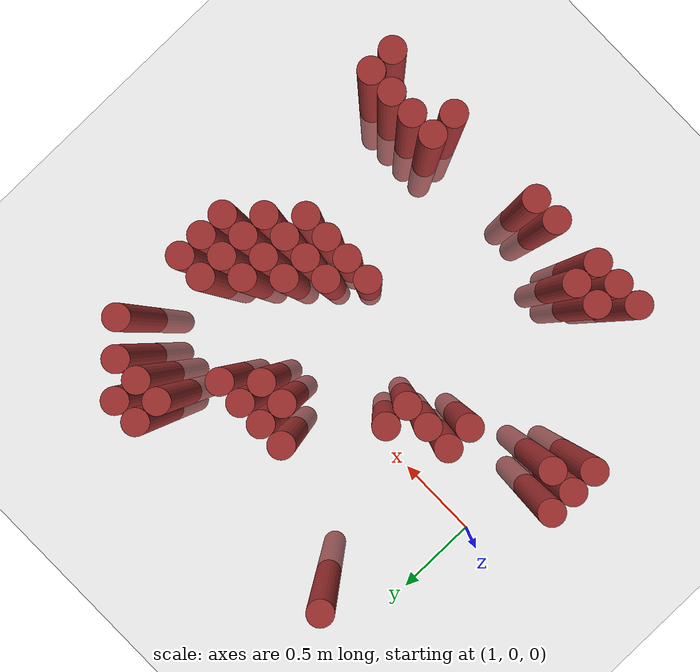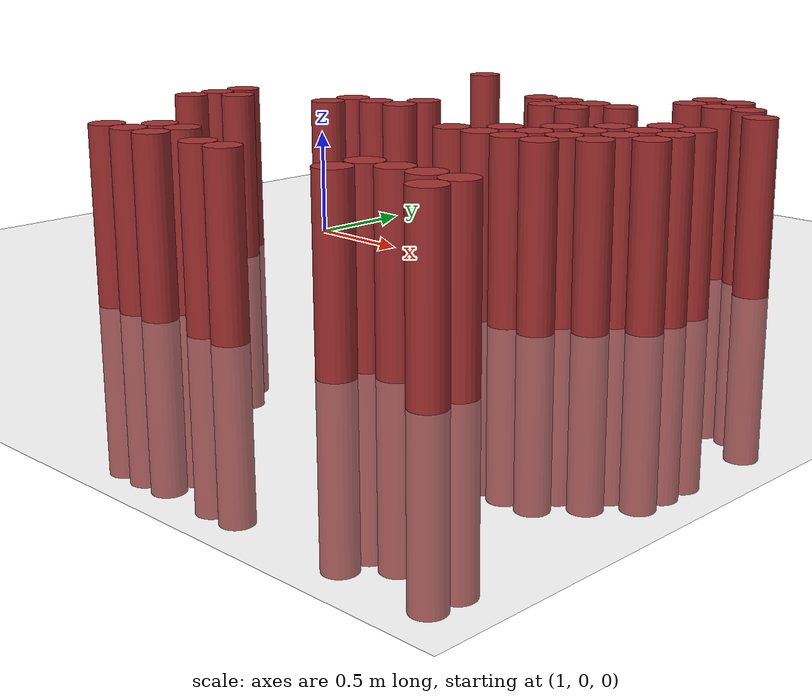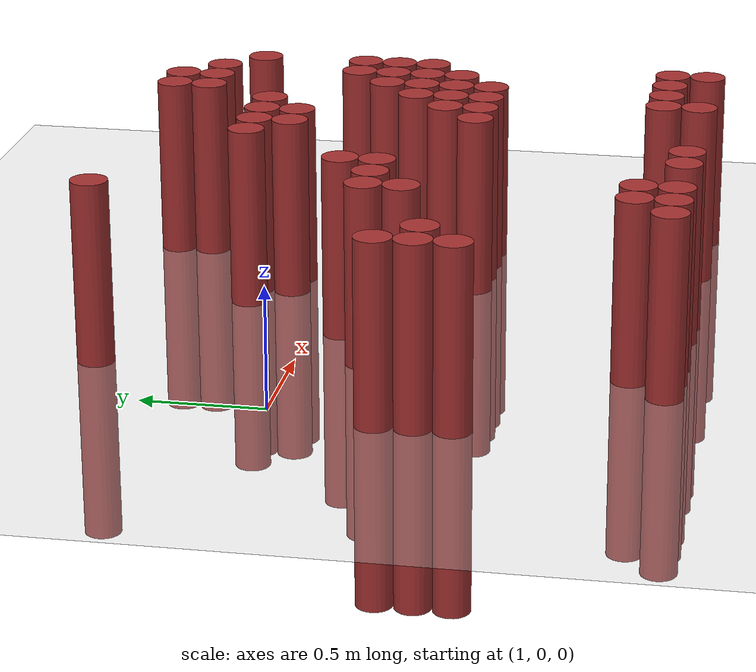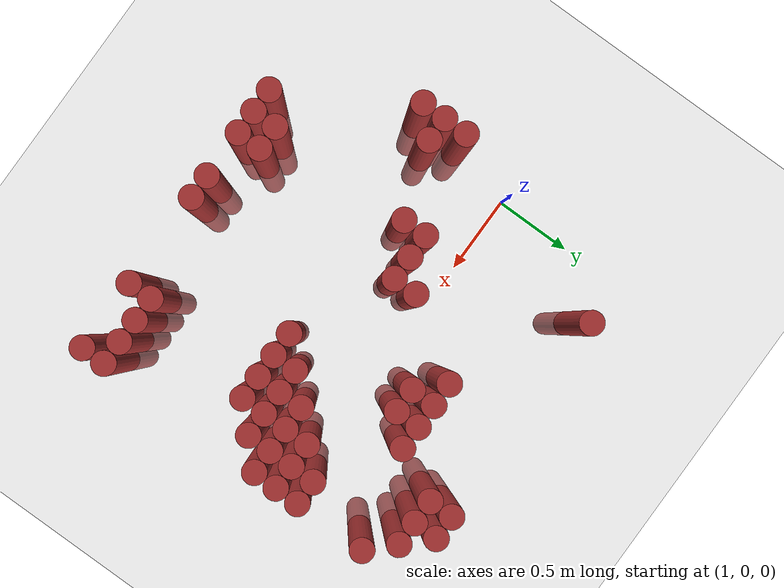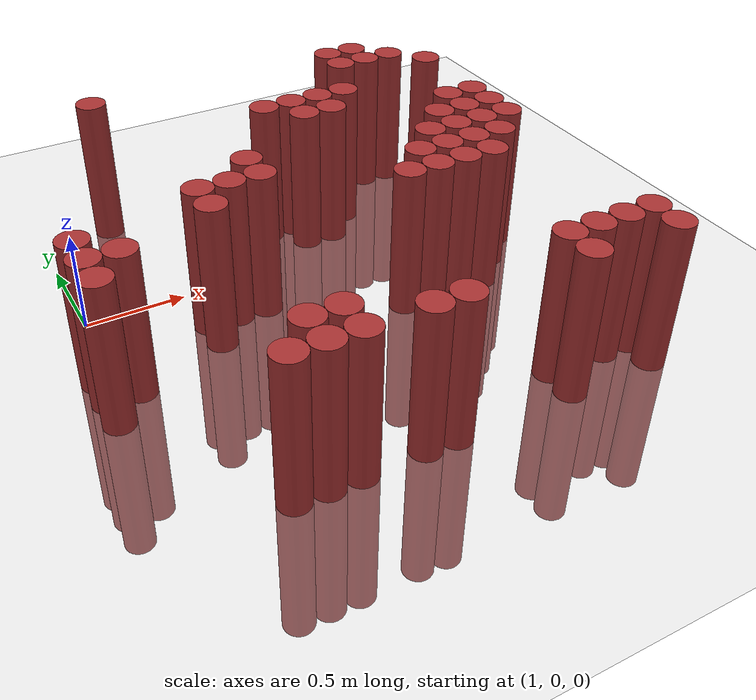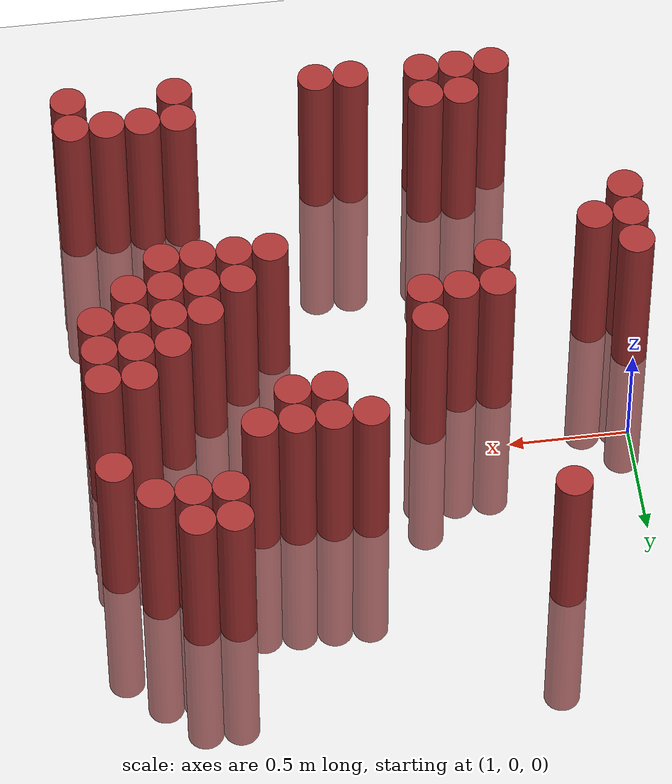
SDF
<sdf version="1.6">
 <world name="default">
  <model name="ground_plane">
   <static>1</static>
   <link name="link">
    <collision name="collision">
     <geometry><plane><normal>0 0 1</normal><size>100 100</size></plane></geometry>
     <surface><friction><ode><mu>100</mu><mu2>50</mu2></ode></friction></surface>
    </collision>
    <visual name="visual">
     <cast_shadows>0</cast_shadows>
     <geometry><plane><normal>0 0 1</normal><size>100 100</size></plane></geometry>
     <material>
      <script><uri>file://media/materials/scripts/gazebo.material</uri><name>Gazebo/Grey</name></script>
     </material>
    </visual>
   </link>
  </model>
  <model name="unit_cylinder_449">
   <static>1</static>
   <pose>0.925000 -0.725000 0.000000 0.000000 0.000000 0.000000</pose>
   <link name="link">
    <inertial>
     <mass>1</mass>
     <inertia><ixx>0.145833</ixx><ixy>0</ixy><ixz>0</ixz><iyy>0.145833</iyy><iyz>0</iyz><izz>0.125</izz></inertia>
    </inertial>
    <collision name="collision">
     <geometry><cylinder><radius>0.075000</radius><length>1.5</length></cylinder></geometry>
    </collision>
    <visual name="visual">
     <geometry><cylinder><radius>0.075000</radius><length>1.5</length></cylinder></geometry>
     <material>
      <ambient>0.648000 0.192000 0.192000 1</ambient>
      <diffuse>0.648000 0.192000 0.192000 1</diffuse>
     </material>
     <material>
      <script><name>Gazebo/Grey</name><uri>file://media/materials/scripts/gazebo.material</uri></script>
     </material>
    </visual>
   </link>
  </model>
  <model name="unit_cylinder_450">
   <static>1</static>
   <pose>0.925000 -0.575000 0.000000 0.000000 0.000000 0.000000</pose>
   <link name="link">
    <inertial>
     <mass>1</mass>
     <inertia><ixx>0.145833</ixx><ixy>0</ixy><ixz>0</ixz><iyy>0.145833</iyy><iyz>0</iyz><izz>0.125</izz></inertia>
    </inertial>
    <collision name="collision">
     <geometry><cylinder><radius>0.075000</radius><length>1.5</length></cylinder></geometry>
    </collision>
    <visual name="visual">
     <geometry><cylinder><radius>0.075000</radius><length>1.5</length></cylinder></geometry>
     <material>
      <ambient>0.648000 0.192000 0.192000 1</ambient>
      <diffuse>0.648000 0.192000 0.192000 1</diffuse>
     </material>
     <material>
      <script><name>Gazebo/Grey</name><uri>file://media/materials/scripts/gazebo.material</uri></script>
     </material>
    </visual>
   </link>
  </model>
  <model name="unit_cylinder_451">
   <static>1</static>
   <pose>0.925000 -0.425000 0.000000 0.000000 0.000000 0.000000</pose>
   <link name="link">
    <inertial>
     <mass>1</mass>
     <inertia><ixx>0.145833</ixx><ixy>0</ixy><ixz>0</ixz><iyy>0.145833</iyy><iyz>0</iyz><izz>0.125</izz></inertia>
    </inertial>
    <collision name="collision">
     <geometry><cylinder><radius>0.075000</radius><length>1.5</length></cylinder></geometry>
    </collision>
    <visual name="visual">
     <geometry><cylinder><radius>0.075000</radius><length>1.5</length></cylinder></geometry>
     <material>
      <ambient>0.648000 0.192000 0.192000 1</ambient>
      <diffuse>0.648000 0.192000 0.192000 1</diffuse>
     </material>
     <material>
      <script><name>Gazebo/Grey</name><uri>file://media/materials/scripts/gazebo.material</uri></script>
     </material>
    </visual>
   </link>
  </model>
  <model name="unit_cylinder_464">
   <static>1</static>
   <pose>1.075000 -0.575000 0.000000 0.000000 0.000000 0.000000</pose>
   <link name="link">
    <inertial>
     <mass>1</mass>
     <inertia><ixx>0.145833</ixx><ixy>0</ixy><ixz>0</ixz><iyy>0.145833</iyy><iyz>0</iyz><izz>0.125</izz></inertia>
    </inertial>
    <collision name="collision">
     <geometry><cylinder><radius>0.075000</radius><length>1.5</length></cylinder></geometry>
    </collision>
    <visual name="visual">
     <geometry><cylinder><radius>0.075000</radius><length>1.5</length></cylinder></geometry>
     <material>
      <ambient>0.648000 0.192000 0.192000 1</ambient>
      <diffuse>0.648000 0.192000 0.192000 1</diffuse>
     </material>
     <material>
      <script><name>Gazebo/Grey</name><uri>file://media/materials/scripts/gazebo.material</uri></script>
     </material>
    </visual>
   </link>
  </model>
  <model name="unit_cylinder_476">
   <static>1</static>
   <pose>1.375000 -1.475000 0.000000 0.000000 0.000000 0.000000</pose>
   <link name="link">
    <inertial>
     <mass>1</mass>
     <inertia><ixx>0.145833</ixx><ixy>0</ixy><ixz>0</ixz><iyy>0.145833</iyy><iyz>0</iyz><izz>0.125</izz></inertia>
    </inertial>
    <collision name="collision">
     <geometry><cylinder><radius>0.075000</radius><length>1.5</length></cylinder></geometry>
    </collision>
    <visual name="visual">
     <geometry><cylinder><radius>0.075000</radius><length>1.5</length></cylinder></geometry>
     <material>
      <ambient>0.648000 0.192000 0.192000 1</ambient>
      <diffuse>0.648000 0.192000 0.192000 1</diffuse>
     </material>
     <material>
      <script><name>Gazebo/Grey</name><uri>file://media/materials/scripts/gazebo.material</uri></script>
     </material>
    </visual>
   </link>
  </model>
  <model name="unit_cylinder_477">
   <static>1</static>
   <pose>1.375000 0.775000 0.000000 0.000000 0.000000 0.000000</pose>
   <link name="link">
    <inertial>
     <mass>1</mass>
     <inertia><ixx>0.145833</ixx><ixy>0</ixy><ixz>0</ixz><iyy>0.145833</iyy><iyz>0</iyz><izz>0.125</izz></inertia>
    </inertial>
    <collision name="collision">
     <geometry><cylinder><radius>0.075000</radius><length>1.5</length></cylinder></geometry>
    </collision>
    <visual name="visual">
     <geometry><cylinder><radius>0.075000</radius><length>1.5</length></cylinder></geometry>
     <material>
      <ambient>0.648000 0.192000 0.192000 1</ambient>
      <diffuse>0.648000 0.192000 0.192000 1</diffuse>
     </material>
     <material>
      <script><name>Gazebo/Grey</name><uri>file://media/materials/scripts/gazebo.material</uri></script>
     </material>
    </visual>
   </link>
  </model>
  <model name="unit_cylinder_481">
   <static>1</static>
   <pose>1.525000 -1.475000 0.000000 0.000000 0.000000 0.000000</pose>
   <link name="link">
    <inertial>
     <mass>1</mass>
     <inertia><ixx>0.145833</ixx><ixy>0</ixy><ixz>0</ixz><iyy>0.145833</iyy><iyz>0</iyz><izz>0.125</izz></inertia>
    </inertial>
    <collision name="collision">
     <geometry><cylinder><radius>0.075000</radius><length>1.5</length></cylinder></geometry>
    </collision>
    <visual name="visual">
     <geometry><cylinder><radius>0.075000</radius><length>1.5</length></cylinder></geometry>
     <material>
      <ambient>0.648000 0.192000 0.192000 1</ambient>
      <diffuse>0.648000 0.192000 0.192000 1</diffuse>
     </material>
     <material>
      <script><name>Gazebo/Grey</name><uri>file://media/materials/scripts/gazebo.material</uri></script>
     </material>
    </visual>
   </link>
  </model>
  <model name="unit_cylinder_482">
   <static>1</static>
   <pose>1.525000 -1.325000 0.000000 0.000000 0.000000 0.000000</pose>
   <link name="link">
    <inertial>
     <mass>1</mass>
     <inertia><ixx>0.145833</ixx><ixy>0</ixy><ixz>0</ixz><iyy>0.145833</iyy><iyz>0</iyz><izz>0.125</izz></inertia>
    </inertial>
    <collision name="collision">
     <geometry><cylinder><radius>0.075000</radius><length>1.5</length></cylinder></geometry>
    </collision>
    <visual name="visual">
     <geometry><cylinder><radius>0.075000</radius><length>1.5</length></cylinder></geometry>
     <material>
      <ambient>0.648000 0.192000 0.192000 1</ambient>
      <diffuse>0.648000 0.192000 0.192000 1</diffuse>
     </material>
     <material>
      <script><name>Gazebo/Grey</name><uri>file://media/materials/scripts/gazebo.material</uri></script>
     </material>
    </visual>
   </link>
  </model>
  <model name="unit_cylinder_483">
   <static>1</static>
   <pose>1.525000 -0.425000 0.000000 0.000000 0.000000 0.000000</pose>
   <link name="link">
    <inertial>
     <mass>1</mass>
     <inertia><ixx>0.145833</ixx><ixy>0</ixy><ixz>0</ixz><iyy>0.145833</iyy><iyz>0</iyz><izz>0.125</izz></inertia>
    </inertial>
    <collision name="collision">
     <geometry><cylinder><radius>0.075000</radius><length>1.5</length></cylinder></geometry>
    </collision>
    <visual name="visual">
     <geometry><cylinder><radius>0.075000</radius><length>1.5</length></cylinder></geometry>
     <material>
      <ambient>0.648000 0.192000 0.192000 1</ambient>
      <diffuse>0.648000 0.192000 0.192000 1</diffuse>
     </material>
     <material>
      <script><name>Gazebo/Grey</name><uri>file://media/materials/scripts/gazebo.material</uri></script>
     </material>
    </visual>
   </link>
  </model>
  <model name="unit_cylinder_484">
   <static>1</static>
   <pose>1.525000 -0.275000 0.000000 0.000000 0.000000 0.000000</pose>
   <link name="link">
    <inertial>
     <mass>1</mass>
     <inertia><ixx>0.145833</ixx><ixy>0</ixy><ixz>0</ixz><iyy>0.145833</iyy><iyz>0</iyz><izz>0.125</izz></inertia>
    </inertial>
    <collision name="collision">
     <geometry><cylinder><radius>0.075000</radius><length>1.5</length></cylinder></geometry>
    </collision>
    <visual name="visual">
     <geometry><cylinder><radius>0.075000</radius><length>1.5</length></cylinder></geometry>
     <material>
      <ambient>0.648000 0.192000 0.192000 1</ambient>
      <diffuse>0.648000 0.192000 0.192000 1</diffuse>
     </material>
     <material>
      <script><name>Gazebo/Grey</name><uri>file://media/materials/scripts/gazebo.material</uri></script>
     </material>
    </visual>
   </link>
  </model>
  <model name="unit_cylinder_488">
   <static>1</static>
   <pose>1.675000 -1.475000 0.000000 0.000000 0.000000 0.000000</pose>
   <link name="link">
    <inertial>
     <mass>1</mass>
     <inertia><ixx>0.145833</ixx><ixy>0</ixy><ixz>0</ixz><iyy>0.145833</iyy><iyz>0</iyz><izz>0.125</izz></inertia>
    </inertial>
    <collision name="collision">
     <geometry><cylinder><radius>0.075000</radius><length>1.5</length></cylinder></geometry>
    </collision>
    <visual name="visual">
     <geometry><cylinder><radius>0.075000</radius><length>1.5</length></cylinder></geometry>
     <material>
      <ambient>0.648000 0.192000 0.192000 1</ambient>
      <diffuse>0.648000 0.192000 0.192000 1</diffuse>
     </material>
     <material>
      <script><name>Gazebo/Grey</name><uri>file://media/materials/scripts/gazebo.material</uri></script>
     </material>
    </visual>
   </link>
  </model>
  <model name="unit_cylinder_489">
   <static>1</static>
   <pose>1.675000 -1.325000 0.000000 0.000000 0.000000 0.000000</pose>
   <link name="link">
    <inertial>
     <mass>1</mass>
     <inertia><ixx>0.145833</ixx><ixy>0</ixy><ixz>0</ixz><iyy>0.145833</iyy><iyz>0</iyz><izz>0.125</izz></inertia>
    </inertial>
    <collision name="collision">
     <geometry><cylinder><radius>0.075000</radius><length>1.5</length></cylinder></geometry>
    </collision>
    <visual name="visual">
     <geometry><cylinder><radius>0.075000</radius><length>1.5</length></cylinder></geometry>
     <material>
      <ambient>0.648000 0.192000 0.192000 1</ambient>
      <diffuse>0.648000 0.192000 0.192000 1</diffuse>
     </material>
     <material>
      <script><name>Gazebo/Grey</name><uri>file://media/materials/scripts/gazebo.material</uri></script>
     </material>
    </visual>
   </link>
  </model>
  <model name="unit_cylinder_490">
   <static>1</static>
   <pose>1.675000 -0.275000 0.000000 0.000000 0.000000 0.000000</pose>
   <link name="link">
    <inertial>
     <mass>1</mass>
     <inertia><ixx>0.145833</ixx><ixy>0</ixy><ixz>0</ixz><iyy>0.145833</iyy><iyz>0</iyz><izz>0.125</izz></inertia>
    </inertial>
    <collision name="collision">
     <geometry><cylinder><radius>0.075000</radius><length>1.5</length></cylinder></geometry>
    </collision>
    <visual name="visual">
     <geometry><cylinder><radius>0.075000</radius><length>1.5</length></cylinder></geometry>
     <material>
      <ambient>0.648000 0.192000 0.192000 1</ambient>
      <diffuse>0.648000 0.192000 0.192000 1</diffuse>
     </material>
     <material>
      <script><name>Gazebo/Grey</name><uri>file://media/materials/scripts/gazebo.material</uri></script>
     </material>
    </visual>
   </link>
  </model>
  <model name="unit_cylinder_497">
   <static>1</static>
   <pose>1.825000 -0.275000 0.000000 0.000000 0.000000 0.000000</pose>
   <link name="link">
    <inertial>
     <mass>1</mass>
     <inertia><ixx>0.145833</ixx><ixy>0</ixy><ixz>0</ixz><iyy>0.145833</iyy><iyz>0</iyz><izz>0.125</izz></inertia>
    </inertial>
    <collision name="collision">
     <geometry><cylinder><radius>0.075000</radius><length>1.5</length></cylinder></geometry>
    </collision>
    <visual name="visual">
     <geometry><cylinder><radius>0.075000</radius><length>1.5</length></cylinder></geometry>
     <material>
      <ambient>0.648000 0.192000 0.192000 1</ambient>
      <diffuse>0.648000 0.192000 0.192000 1</diffuse>
     </material>
     <material>
      <script><name>Gazebo/Grey</name><uri>file://media/materials/scripts/gazebo.material</uri></script>
     </material>
    </visual>
   </link>
  </model>
  <model name="unit_cylinder_498">
   <static>1</static>
   <pose>1.825000 -0.125000 0.000000 0.000000 0.000000 0.000000</pose>
   <link name="link">
    <inertial>
     <mass>1</mass>
     <inertia><ixx>0.145833</ixx><ixy>0</ixy><ixz>0</ixz><iyy>0.145833</iyy><iyz>0</iyz><izz>0.125</izz></inertia>
    </inertial>
    <collision name="collision">
     <geometry><cylinder><radius>0.075000</radius><length>1.5</length></cylinder></geometry>
    </collision>
    <visual name="visual">
     <geometry><cylinder><radius>0.075000</radius><length>1.5</length></cylinder></geometry>
     <material>
      <ambient>0.648000 0.192000 0.192000 1</ambient>
      <diffuse>0.648000 0.192000 0.192000 1</diffuse>
     </material>
     <material>
      <script><name>Gazebo/Grey</name><uri>file://media/materials/scripts/gazebo.material</uri></script>
     </material>
    </visual>
   </link>
  </model>
  <model name="unit_cylinder_506">
   <static>1</static>
   <pose>1.975000 -1.475000 0.000000 0.000000 0.000000 0.000000</pose>
   <link name="link">
    <inertial>
     <mass>1</mass>
     <inertia><ixx>0.145833</ixx><ixy>0</ixy><ixz>0</ixz><iyy>0.145833</iyy><iyz>0</iyz><izz>0.125</izz></inertia>
    </inertial>
    <collision name="collision">
     <geometry><cylinder><radius>0.075000</radius><length>1.5</length></cylinder></geometry>
    </collision>
    <visual name="visual">
     <geometry><cylinder><radius>0.075000</radius><length>1.5</length></cylinder></geometry>
     <material>
      <ambient>0.648000 0.192000 0.192000 1</ambient>
      <diffuse>0.648000 0.192000 0.192000 1</diffuse>
     </material>
     <material>
      <script><name>Gazebo/Grey</name><uri>file://media/materials/scripts/gazebo.material</uri></script>
     </material>
    </visual>
   </link>
  </model>
  <model name="unit_cylinder_507">
   <static>1</static>
   <pose>2.125000 -1.475000 0.000000 0.000000 0.000000 0.000000</pose>
   <link name="link">
    <inertial>
     <mass>1</mass>
     <inertia><ixx>0.145833</ixx><ixy>0</ixy><ixz>0</ixz><iyy>0.145833</iyy><iyz>0</iyz><izz>0.125</izz></inertia>
    </inertial>
    <collision name="collision">
     <geometry><cylinder><radius>0.075000</radius><length>1.5</length></cylinder></geometry>
    </collision>
    <visual name="visual">
     <geometry><cylinder><radius>0.075000</radius><length>1.5</length></cylinder></geometry>
     <material>
      <ambient>0.648000 0.192000 0.192000 1</ambient>
      <diffuse>0.648000 0.192000 0.192000 1</diffuse>
     </material>
     <material>
      <script><name>Gazebo/Grey</name><uri>file://media/materials/scripts/gazebo.material</uri></script>
     </material>
    </visual>
   </link>
  </model>
  <model name="unit_cylinder_508">
   <static>1</static>
   <pose>2.125000 0.325000 0.000000 0.000000 0.000000 0.000000</pose>
   <link name="link">
    <inertial>
     <mass>1</mass>
     <inertia><ixx>0.145833</ixx><ixy>0</ixy><ixz>0</ixz><iyy>0.145833</iyy><iyz>0</iyz><izz>0.125</izz></inertia>
    </inertial>
    <collision name="collision">
     <geometry><cylinder><radius>0.075000</radius><length>1.5</length></cylinder></geometry>
    </collision>
    <visual name="visual">
     <geometry><cylinder><radius>0.075000</radius><length>1.5</length></cylinder></geometry>
     <material>
      <ambient>0.648000 0.192000 0.192000 1</ambient>
      <diffuse>0.648000 0.192000 0.192000 1</diffuse>
     </material>
     <material>
      <script><name>Gazebo/Grey</name><uri>file://media/materials/scripts/gazebo.material</uri></script>
     </material>
    </visual>
   </link>
  </model>
  <model name="unit_cylinder_509">
   <static>1</static>
   <pose>2.275000 0.175000 0.000000 0.000000 0.000000 0.000000</pose>
   <link name="link">
    <inertial>
     <mass>1</mass>
     <inertia><ixx>0.145833</ixx><ixy>0</ixy><ixz>0</ixz><iyy>0.145833</iyy><iyz>0</iyz><izz>0.125</izz></inertia>
    </inertial>
    <collision name="collision">
     <geometry><cylinder><radius>0.075000</radius><length>1.5</length></cylinder></geometry>
    </collision>
    <visual name="visual">
     <geometry><cylinder><radius>0.075000</radius><length>1.5</length></cylinder></geometry>
     <material>
      <ambient>0.648000 0.192000 0.192000 1</ambient>
      <diffuse>0.648000 0.192000 0.192000 1</diffuse>
     </material>
     <material>
      <script><name>Gazebo/Grey</name><uri>file://media/materials/scripts/gazebo.material</uri></script>
     </material>
    </visual>
   </link>
  </model>
  <model name="unit_cylinder_510">
   <static>1</static>
   <pose>2.275000 0.325000 0.000000 0.000000 0.000000 0.000000</pose>
   <link name="link">
    <inertial>
     <mass>1</mass>
     <inertia><ixx>0.145833</ixx><ixy>0</ixy><ixz>0</ixz><iyy>0.145833</iyy><iyz>0</iyz><izz>0.125</izz></inertia>
    </inertial>
    <collision name="collision">
     <geometry><cylinder><radius>0.075000</radius><length>1.5</length></cylinder></geometry>
    </collision>
    <visual name="visual">
     <geometry><cylinder><radius>0.075000</radius><length>1.5</length></cylinder></geometry>
     <material>
      <ambient>0.648000 0.192000 0.192000 1</ambient>
      <diffuse>0.648000 0.192000 0.192000 1</diffuse>
     </material>
     <material>
      <script><name>Gazebo/Grey</name><uri>file://media/materials/scripts/gazebo.material</uri></script>
     </material>
    </visual>
   </link>
  </model>
  <model name="unit_cylinder_512">
   <static>1</static>
   <pose>2.425000 -0.575000 0.000000 0.000000 0.000000 0.000000</pose>
   <link name="link">
    <inertial>
     <mass>1</mass>
     <inertia><ixx>0.145833</ixx><ixy>0</ixy><ixz>0</ixz><iyy>0.145833</iyy><iyz>0</iyz><izz>0.125</izz></inertia>
    </inertial>
    <collision name="collision">
     <geometry><cylinder><radius>0.075000</radius><length>1.5</length></cylinder></geometry>
    </collision>
    <visual name="visual">
     <geometry><cylinder><radius>0.075000</radius><length>1.5</length></cylinder></geometry>
     <material>
      <ambient>0.648000 0.192000 0.192000 1</ambient>
      <diffuse>0.648000 0.192000 0.192000 1</diffuse>
     </material>
     <material>
      <script><name>Gazebo/Grey</name><uri>file://media/materials/scripts/gazebo.material</uri></script>
     </material>
    </visual>
   </link>
  </model>
  <model name="unit_cylinder_513">
   <static>1</static>
   <pose>2.425000 0.175000 0.000000 0.000000 0.000000 0.000000</pose>
   <link name="link">
    <inertial>
     <mass>1</mass>
     <inertia><ixx>0.145833</ixx><ixy>0</ixy><ixz>0</ixz><iyy>0.145833</iyy><iyz>0</iyz><izz>0.125</izz></inertia>
    </inertial>
    <collision name="collision">
     <geometry><cylinder><radius>0.075000</radius><length>1.5</length></cylinder></geometry>
    </collision>
    <visual name="visual">
     <geometry><cylinder><radius>0.075000</radius><length>1.5</length></cylinder></geometry>
     <material>
      <ambient>0.648000 0.192000 0.192000 1</ambient>
      <diffuse>0.648000 0.192000 0.192000 1</diffuse>
     </material>
     <material>
      <script><name>Gazebo/Grey</name><uri>file://media/materials/scripts/gazebo.material</uri></script>
     </material>
    </visual>
   </link>
  </model>
  <model name="unit_cylinder_514">
   <static>1</static>
   <pose>2.425000 0.325000 0.000000 0.000000 0.000000 0.000000</pose>
   <link name="link">
    <inertial>
     <mass>1</mass>
     <inertia><ixx>0.145833</ixx><ixy>0</ixy><ixz>0</ixz><iyy>0.145833</iyy><iyz>0</iyz><izz>0.125</izz></inertia>
    </inertial>
    <collision name="collision">
     <geometry><cylinder><radius>0.075000</radius><length>1.5</length></cylinder></geometry>
    </collision>
    <visual name="visual">
     <geometry><cylinder><radius>0.075000</radius><length>1.5</length></cylinder></geometry>
     <material>
      <ambient>0.648000 0.192000 0.192000 1</ambient>
      <diffuse>0.648000 0.192000 0.192000 1</diffuse>
     </material>
     <material>
      <script><name>Gazebo/Grey</name><uri>file://media/materials/scripts/gazebo.material</uri></script>
     </material>
    </visual>
   </link>
  </model>
  <model name="unit_cylinder_519">
   <static>1</static>
   <pose>2.575000 -0.575000 0.000000 0.000000 0.000000 0.000000</pose>
   <link name="link">
    <inertial>
     <mass>1</mass>
     <inertia><ixx>0.145833</ixx><ixy>0</ixy><ixz>0</ixz><iyy>0.145833</iyy><iyz>0</iyz><izz>0.125</izz></inertia>
    </inertial>
    <collision name="collision">
     <geometry><cylinder><radius>0.075000</radius><length>1.5</length></cylinder></geometry>
    </collision>
    <visual name="visual">
     <geometry><cylinder><radius>0.075000</radius><length>1.5</length></cylinder></geometry>
     <material>
      <ambient>0.648000 0.192000 0.192000 1</ambient>
      <diffuse>0.648000 0.192000 0.192000 1</diffuse>
     </material>
     <material>
      <script><name>Gazebo/Grey</name><uri>file://media/materials/scripts/gazebo.material</uri></script>
     </material>
    </visual>
   </link>
  </model>
  <model name="unit_cylinder_520">
   <static>1</static>
   <pose>2.575000 -0.425000 0.000000 0.000000 0.000000 0.000000</pose>
   <link name="link">
    <inertial>
     <mass>1</mass>
     <inertia><ixx>0.145833</ixx><ixy>0</ixy><ixz>0</ixz><iyy>0.145833</iyy><iyz>0</iyz><izz>0.125</izz></inertia>
    </inertial>
    <collision name="collision">
     <geometry><cylinder><radius>0.075000</radius><length>1.5</length></cylinder></geometry>
    </collision>
    <visual name="visual">
     <geometry><cylinder><radius>0.075000</radius><length>1.5</length></cylinder></geometry>
     <material>
      <ambient>0.648000 0.192000 0.192000 1</ambient>
      <diffuse>0.648000 0.192000 0.192000 1</diffuse>
     </material>
     <material>
      <script><name>Gazebo/Grey</name><uri>file://media/materials/scripts/gazebo.material</uri></script>
     </material>
    </visual>
   </link>
  </model>
  <model name="unit_cylinder_521">
   <static>1</static>
   <pose>2.575000 0.325000 0.000000 0.000000 0.000000 0.000000</pose>
   <link name="link">
    <inertial>
     <mass>1</mass>
     <inertia><ixx>0.145833</ixx><ixy>0</ixy><ixz>0</ixz><iyy>0.145833</iyy><iyz>0</iyz><izz>0.125</izz></inertia>
    </inertial>
    <collision name="collision">
     <geometry><cylinder><radius>0.075000</radius><length>1.5</length></cylinder></geometry>
    </collision>
    <visual name="visual">
     <geometry><cylinder><radius>0.075000</radius><length>1.5</length></cylinder></geometry>
     <material>
      <ambient>0.648000 0.192000 0.192000 1</ambient>
      <diffuse>0.648000 0.192000 0.192000 1</diffuse>
     </material>
     <material>
      <script><name>Gazebo/Grey</name><uri>file://media/materials/scripts/gazebo.material</uri></script>
     </material>
    </visual>
   </link>
  </model>
  <model name="unit_cylinder_524">
   <static>1</static>
   <pose>2.725000 -1.475000 0.000000 0.000000 0.000000 0.000000</pose>
   <link name="link">
    <inertial>
     <mass>1</mass>
     <inertia><ixx>0.145833</ixx><ixy>0</ixy><ixz>0</ixz><iyy>0.145833</iyy><iyz>0</iyz><izz>0.125</izz></inertia>
    </inertial>
    <collision name="collision">
     <geometry><cylinder><radius>0.075000</radius><length>1.5</length></cylinder></geometry>
    </collision>
    <visual name="visual">
     <geometry><cylinder><radius>0.075000</radius><length>1.5</length></cylinder></geometry>
     <material>
      <ambient>0.648000 0.192000 0.192000 1</ambient>
      <diffuse>0.648000 0.192000 0.192000 1</diffuse>
     </material>
     <material>
      <script><name>Gazebo/Grey</name><uri>file://media/materials/scripts/gazebo.material</uri></script>
     </material>
    </visual>
   </link>
  </model>
  <model name="unit_cylinder_525">
   <static>1</static>
   <pose>2.725000 -1.325000 0.000000 0.000000 0.000000 0.000000</pose>
   <link name="link">
    <inertial>
     <mass>1</mass>
     <inertia><ixx>0.145833</ixx><ixy>0</ixy><ixz>0</ixz><iyy>0.145833</iyy><iyz>0</iyz><izz>0.125</izz></inertia>
    </inertial>
    <collision name="collision">
     <geometry><cylinder><radius>0.075000</radius><length>1.5</length></cylinder></geometry>
    </collision>
    <visual name="visual">
     <geometry><cylinder><radius>0.075000</radius><length>1.5</length></cylinder></geometry>
     <material>
      <ambient>0.648000 0.192000 0.192000 1</ambient>
      <diffuse>0.648000 0.192000 0.192000 1</diffuse>
     </material>
     <material>
      <script><name>Gazebo/Grey</name><uri>file://media/materials/scripts/gazebo.material</uri></script>
     </material>
    </visual>
   </link>
  </model>
  <model name="unit_cylinder_526">
   <static>1</static>
   <pose>2.725000 -0.575000 0.000000 0.000000 0.000000 0.000000</pose>
   <link name="link">
    <inertial>
     <mass>1</mass>
     <inertia><ixx>0.145833</ixx><ixy>0</ixy><ixz>0</ixz><iyy>0.145833</iyy><iyz>0</iyz><izz>0.125</izz></inertia>
    </inertial>
    <collision name="collision">
     <geometry><cylinder><radius>0.075000</radius><length>1.5</length></cylinder></geometry>
    </collision>
    <visual name="visual">
     <geometry><cylinder><radius>0.075000</radius><length>1.5</length></cylinder></geometry>
     <material>
      <ambient>0.648000 0.192000 0.192000 1</ambient>
      <diffuse>0.648000 0.192000 0.192000 1</diffuse>
     </material>
     <material>
      <script><name>Gazebo/Grey</name><uri>file://media/materials/scripts/gazebo.material</uri></script>
     </material>
    </visual>
   </link>
  </model>
  <model name="unit_cylinder_527">
   <static>1</static>
   <pose>2.725000 -0.425000 0.000000 0.000000 0.000000 0.000000</pose>
   <link name="link">
    <inertial>
     <mass>1</mass>
     <inertia><ixx>0.145833</ixx><ixy>0</ixy><ixz>0</ixz><iyy>0.145833</iyy><iyz>0</iyz><izz>0.125</izz></inertia>
    </inertial>
    <collision name="collision">
     <geometry><cylinder><radius>0.075000</radius><length>1.5</length></cylinder></geometry>
    </collision>
    <visual name="visual">
     <geometry><cylinder><radius>0.075000</radius><length>1.5</length></cylinder></geometry>
     <material>
      <ambient>0.648000 0.192000 0.192000 1</ambient>
      <diffuse>0.648000 0.192000 0.192000 1</diffuse>
     </material>
     <material>
      <script><name>Gazebo/Grey</name><uri>file://media/materials/scripts/gazebo.material</uri></script>
     </material>
    </visual>
   </link>
  </model>
  <model name="unit_cylinder_528">
   <static>1</static>
   <pose>2.725000 -0.275000 0.000000 0.000000 0.000000 0.000000</pose>
   <link name="link">
    <inertial>
     <mass>1</mass>
     <inertia><ixx>0.145833</ixx><ixy>0</ixy><ixz>0</ixz><iyy>0.145833</iyy><iyz>0</iyz><izz>0.125</izz></inertia>
    </inertial>
    <collision name="collision">
     <geometry><cylinder><radius>0.075000</radius><length>1.5</length></cylinder></geometry>
    </collision>
    <visual name="visual">
     <geometry><cylinder><radius>0.075000</radius><length>1.5</length></cylinder></geometry>
     <material>
      <ambient>0.648000 0.192000 0.192000 1</ambient>
      <diffuse>0.648000 0.192000 0.192000 1</diffuse>
     </material>
     <material>
      <script><name>Gazebo/Grey</name><uri>file://media/materials/scripts/gazebo.material</uri></script>
     </material>
    </visual>
   </link>
  </model>
  <model name="unit_cylinder_529">
   <static>1</static>
   <pose>2.725000 0.625000 0.000000 0.000000 0.000000 0.000000</pose>
   <link name="link">
    <inertial>
     <mass>1</mass>
     <inertia><ixx>0.145833</ixx><ixy>0</ixy><ixz>0</ixz><iyy>0.145833</iyy><iyz>0</iyz><izz>0.125</izz></inertia>
    </inertial>
    <collision name="collision">
     <geometry><cylinder><radius>0.075000</radius><length>1.5</length></cylinder></geometry>
    </collision>
    <visual name="visual">
     <geometry><cylinder><radius>0.075000</radius><length>1.5</length></cylinder></geometry>
     <material>
      <ambient>0.648000 0.192000 0.192000 1</ambient>
      <diffuse>0.648000 0.192000 0.192000 1</diffuse>
     </material>
     <material>
      <script><name>Gazebo/Grey</name><uri>file://media/materials/scripts/gazebo.material</uri></script>
     </material>
    </visual>
   </link>
  </model>
  <model name="unit_cylinder_530">
   <static>1</static>
   <pose>2.725000 0.775000 0.000000 0.000000 0.000000 0.000000</pose>
   <link name="link">
    <inertial>
     <mass>1</mass>
     <inertia><ixx>0.145833</ixx><ixy>0</ixy><ixz>0</ixz><iyy>0.145833</iyy><iyz>0</iyz><izz>0.125</izz></inertia>
    </inertial>
    <collision name="collision">
     <geometry><cylinder><radius>0.075000</radius><length>1.5</length></cylinder></geometry>
    </collision>
    <visual name="visual">
     <geometry><cylinder><radius>0.075000</radius><length>1.5</length></cylinder></geometry>
     <material>
      <ambient>0.648000 0.192000 0.192000 1</ambient>
      <diffuse>0.648000 0.192000 0.192000 1</diffuse>
     </material>
     <material>
      <script><name>Gazebo/Grey</name><uri>file://media/materials/scripts/gazebo.material</uri></script>
     </material>
    </visual>
   </link>
  </model>
  <model name="unit_cylinder_534">
   <static>1</static>
   <pose>2.875000 -1.325000 0.000000 0.000000 0.000000 0.000000</pose>
   <link name="link">
    <inertial>
     <mass>1</mass>
     <inertia><ixx>0.145833</ixx><ixy>0</ixy><ixz>0</ixz><iyy>0.145833</iyy><iyz>0</iyz><izz>0.125</izz></inertia>
    </inertial>
    <collision name="collision">
     <geometry><cylinder><radius>0.075000</radius><length>1.5</length></cylinder></geometry>
    </collision>
    <visual name="visual">
     <geometry><cylinder><radius>0.075000</radius><length>1.5</length></cylinder></geometry>
     <material>
      <ambient>0.648000 0.192000 0.192000 1</ambient>
      <diffuse>0.648000 0.192000 0.192000 1</diffuse>
     </material>
     <material>
      <script><name>Gazebo/Grey</name><uri>file://media/materials/scripts/gazebo.material</uri></script>
     </material>
    </visual>
   </link>
  </model>
  <model name="unit_cylinder_535">
   <static>1</static>
   <pose>2.875000 -0.575000 0.000000 0.000000 0.000000 0.000000</pose>
   <link name="link">
    <inertial>
     <mass>1</mass>
     <inertia><ixx>0.145833</ixx><ixy>0</ixy><ixz>0</ixz><iyy>0.145833</iyy><iyz>0</iyz><izz>0.125</izz></inertia>
    </inertial>
    <collision name="collision">
     <geometry><cylinder><radius>0.075000</radius><length>1.5</length></cylinder></geometry>
    </collision>
    <visual name="visual">
     <geometry><cylinder><radius>0.075000</radius><length>1.5</length></cylinder></geometry>
     <material>
      <ambient>0.648000 0.192000 0.192000 1</ambient>
      <diffuse>0.648000 0.192000 0.192000 1</diffuse>
     </material>
     <material>
      <script><name>Gazebo/Grey</name><uri>file://media/materials/scripts/gazebo.material</uri></script>
     </material>
    </visual>
   </link>
  </model>
  <model name="unit_cylinder_536">
   <static>1</static>
   <pose>2.875000 -0.425000 0.000000 0.000000 0.000000 0.000000</pose>
   <link name="link">
    <inertial>
     <mass>1</mass>
     <inertia><ixx>0.145833</ixx><ixy>0</ixy><ixz>0</ixz><iyy>0.145833</iyy><iyz>0</iyz><izz>0.125</izz></inertia>
    </inertial>
    <collision name="collision">
     <geometry><cylinder><radius>0.075000</radius><length>1.5</length></cylinder></geometry>
    </collision>
    <visual name="visual">
     <geometry><cylinder><radius>0.075000</radius><length>1.5</length></cylinder></geometry>
     <material>
      <ambient>0.648000 0.192000 0.192000 1</ambient>
      <diffuse>0.648000 0.192000 0.192000 1</diffuse>
     </material>
     <material>
      <script><name>Gazebo/Grey</name><uri>file://media/materials/scripts/gazebo.material</uri></script>
     </material>
    </visual>
   </link>
  </model>
  <model name="unit_cylinder_537">
   <static>1</static>
   <pose>2.875000 -0.275000 0.000000 0.000000 0.000000 0.000000</pose>
   <link name="link">
    <inertial>
     <mass>1</mass>
     <inertia><ixx>0.145833</ixx><ixy>0</ixy><ixz>0</ixz><iyy>0.145833</iyy><iyz>0</iyz><izz>0.125</izz></inertia>
    </inertial>
    <collision name="collision">
     <geometry><cylinder><radius>0.075000</radius><length>1.5</length></cylinder></geometry>
    </collision>
    <visual name="visual">
     <geometry><cylinder><radius>0.075000</radius><length>1.5</length></cylinder></geometry>
     <material>
      <ambient>0.648000 0.192000 0.192000 1</ambient>
      <diffuse>0.648000 0.192000 0.192000 1</diffuse>
     </material>
     <material>
      <script><name>Gazebo/Grey</name><uri>file://media/materials/scripts/gazebo.material</uri></script>
     </material>
    </visual>
   </link>
  </model>
  <model name="unit_cylinder_538">
   <static>1</static>
   <pose>2.875000 -0.125000 0.000000 0.000000 0.000000 0.000000</pose>
   <link name="link">
    <inertial>
     <mass>1</mass>
     <inertia><ixx>0.145833</ixx><ixy>0</ixy><ixz>0</ixz><iyy>0.145833</iyy><iyz>0</iyz><izz>0.125</izz></inertia>
    </inertial>
    <collision name="collision">
     <geometry><cylinder><radius>0.075000</radius><length>1.5</length></cylinder></geometry>
    </collision>
    <visual name="visual">
     <geometry><cylinder><radius>0.075000</radius><length>1.5</length></cylinder></geometry>
     <material>
      <ambient>0.648000 0.192000 0.192000 1</ambient>
      <diffuse>0.648000 0.192000 0.192000 1</diffuse>
     </material>
     <material>
      <script><name>Gazebo/Grey</name><uri>file://media/materials/scripts/gazebo.material</uri></script>
     </material>
    </visual>
   </link>
  </model>
  <model name="unit_cylinder_539">
   <static>1</static>
   <pose>2.875000 0.625000 0.000000 0.000000 0.000000 0.000000</pose>
   <link name="link">
    <inertial>
     <mass>1</mass>
     <inertia><ixx>0.145833</ixx><ixy>0</ixy><ixz>0</ixz><iyy>0.145833</iyy><iyz>0</iyz><izz>0.125</izz></inertia>
    </inertial>
    <collision name="collision">
     <geometry><cylinder><radius>0.075000</radius><length>1.5</length></cylinder></geometry>
    </collision>
    <visual name="visual">
     <geometry><cylinder><radius>0.075000</radius><length>1.5</length></cylinder></geometry>
     <material>
      <ambient>0.648000 0.192000 0.192000 1</ambient>
      <diffuse>0.648000 0.192000 0.192000 1</diffuse>
     </material>
     <material>
      <script><name>Gazebo/Grey</name><uri>file://media/materials/scripts/gazebo.material</uri></script>
     </material>
    </visual>
   </link>
  </model>
  <model name="unit_cylinder_540">
   <static>1</static>
   <pose>2.875000 0.775000 0.000000 0.000000 0.000000 0.000000</pose>
   <link name="link">
    <inertial>
     <mass>1</mass>
     <inertia><ixx>0.145833</ixx><ixy>0</ixy><ixz>0</ixz><iyy>0.145833</iyy><iyz>0</iyz><izz>0.125</izz></inertia>
    </inertial>
    <collision name="collision">
     <geometry><cylinder><radius>0.075000</radius><length>1.5</length></cylinder></geometry>
    </collision>
    <visual name="visual">
     <geometry><cylinder><radius>0.075000</radius><length>1.5</length></cylinder></geometry>
     <material>
      <ambient>0.648000 0.192000 0.192000 1</ambient>
      <diffuse>0.648000 0.192000 0.192000 1</diffuse>
     </material>
     <material>
      <script><name>Gazebo/Grey</name><uri>file://media/materials/scripts/gazebo.material</uri></script>
     </material>
    </visual>
   </link>
  </model>
  <model name="unit_cylinder_549">
   <static>1</static>
   <pose>3.025000 -1.325000 0.000000 0.000000 0.000000 0.000000</pose>
   <link name="link">
    <inertial>
     <mass>1</mass>
     <inertia><ixx>0.145833</ixx><ixy>0</ixy><ixz>0</ixz><iyy>0.145833</iyy><iyz>0</iyz><izz>0.125</izz></inertia>
    </inertial>
    <collision name="collision">
     <geometry><cylinder><radius>0.075000</radius><length>1.5</length></cylinder></geometry>
    </collision>
    <visual name="visual">
     <geometry><cylinder><radius>0.075000</radius><length>1.5</length></cylinder></geometry>
     <material>
      <ambient>0.648000 0.192000 0.192000 1</ambient>
      <diffuse>0.648000 0.192000 0.192000 1</diffuse>
     </material>
     <material>
      <script><name>Gazebo/Grey</name><uri>file://media/materials/scripts/gazebo.material</uri></script>
     </material>
    </visual>
   </link>
  </model>
  <model name="unit_cylinder_550">
   <static>1</static>
   <pose>3.025000 -0.425000 0.000000 0.000000 0.000000 0.000000</pose>
   <link name="link">
    <inertial>
     <mass>1</mass>
     <inertia><ixx>0.145833</ixx><ixy>0</ixy><ixz>0</ixz><iyy>0.145833</iyy><iyz>0</iyz><izz>0.125</izz></inertia>
    </inertial>
    <collision name="collision">
     <geometry><cylinder><radius>0.075000</radius><length>1.5</length></cylinder></geometry>
    </collision>
    <visual name="visual">
     <geometry><cylinder><radius>0.075000</radius><length>1.5</length></cylinder></geometry>
     <material>
      <ambient>0.648000 0.192000 0.192000 1</ambient>
      <diffuse>0.648000 0.192000 0.192000 1</diffuse>
     </material>
     <material>
      <script><name>Gazebo/Grey</name><uri>file://media/materials/scripts/gazebo.material</uri></script>
     </material>
    </visual>
   </link>
  </model>
  <model name="unit_cylinder_551">
   <static>1</static>
   <pose>3.025000 -0.275000 0.000000 0.000000 0.000000 0.000000</pose>
   <link name="link">
    <inertial>
     <mass>1</mass>
     <inertia><ixx>0.145833</ixx><ixy>0</ixy><ixz>0</ixz><iyy>0.145833</iyy><iyz>0</iyz><izz>0.125</izz></inertia>
    </inertial>
    <collision name="collision">
     <geometry><cylinder><radius>0.075000</radius><length>1.5</length></cylinder></geometry>
    </collision>
    <visual name="visual">
     <geometry><cylinder><radius>0.075000</radius><length>1.5</length></cylinder></geometry>
     <material>
      <ambient>0.648000 0.192000 0.192000 1</ambient>
      <diffuse>0.648000 0.192000 0.192000 1</diffuse>
     </material>
     <material>
      <script><name>Gazebo/Grey</name><uri>file://media/materials/scripts/gazebo.material</uri></script>
     </material>
    </visual>
   </link>
  </model>
  <model name="unit_cylinder_552">
   <static>1</static>
   <pose>3.025000 -0.125000 0.000000 0.000000 0.000000 0.000000</pose>
   <link name="link">
    <inertial>
     <mass>1</mass>
     <inertia><ixx>0.145833</ixx><ixy>0</ixy><ixz>0</ixz><iyy>0.145833</iyy><iyz>0</iyz><izz>0.125</izz></inertia>
    </inertial>
    <collision name="collision">
     <geometry><cylinder><radius>0.075000</radius><length>1.5</length></cylinder></geometry>
    </collision>
    <visual name="visual">
     <geometry><cylinder><radius>0.075000</radius><length>1.5</length></cylinder></geometry>
     <material>
      <ambient>0.648000 0.192000 0.192000 1</ambient>
      <diffuse>0.648000 0.192000 0.192000 1</diffuse>
     </material>
     <material>
      <script><name>Gazebo/Grey</name><uri>file://media/materials/scripts/gazebo.material</uri></script>
     </material>
    </visual>
   </link>
  </model>
  <model name="unit_cylinder_553">
   <static>1</static>
   <pose>3.025000 0.025000 0.000000 0.000000 0.000000 0.000000</pose>
   <link name="link">
    <inertial>
     <mass>1</mass>
     <inertia><ixx>0.145833</ixx><ixy>0</ixy><ixz>0</ixz><iyy>0.145833</iyy><iyz>0</iyz><izz>0.125</izz></inertia>
    </inertial>
    <collision name="collision">
     <geometry><cylinder><radius>0.075000</radius><length>1.5</length></cylinder></geometry>
    </collision>
    <visual name="visual">
     <geometry><cylinder><radius>0.075000</radius><length>1.5</length></cylinder></geometry>
     <material>
      <ambient>0.648000 0.192000 0.192000 1</ambient>
      <diffuse>0.648000 0.192000 0.192000 1</diffuse>
     </material>
     <material>
      <script><name>Gazebo/Grey</name><uri>file://media/materials/scripts/gazebo.material</uri></script>
     </material>
    </visual>
   </link>
  </model>
  <model name="unit_cylinder_554">
   <static>1</static>
   <pose>3.025000 0.625000 0.000000 0.000000 0.000000 0.000000</pose>
   <link name="link">
    <inertial>
     <mass>1</mass>
     <inertia><ixx>0.145833</ixx><ixy>0</ixy><ixz>0</ixz><iyy>0.145833</iyy><iyz>0</iyz><izz>0.125</izz></inertia>
    </inertial>
    <collision name="collision">
     <geometry><cylinder><radius>0.075000</radius><length>1.5</length></cylinder></geometry>
    </collision>
    <visual name="visual">
     <geometry><cylinder><radius>0.075000</radius><length>1.5</length></cylinder></geometry>
     <material>
      <ambient>0.648000 0.192000 0.192000 1</ambient>
      <diffuse>0.648000 0.192000 0.192000 1</diffuse>
     </material>
     <material>
      <script><name>Gazebo/Grey</name><uri>file://media/materials/scripts/gazebo.material</uri></script>
     </material>
    </visual>
   </link>
  </model>
  <model name="unit_cylinder_560">
   <static>1</static>
   <pose>3.175000 -1.475000 0.000000 0.000000 0.000000 0.000000</pose>
   <link name="link">
    <inertial>
     <mass>1</mass>
     <inertia><ixx>0.145833</ixx><ixy>0</ixy><ixz>0</ixz><iyy>0.145833</iyy><iyz>0</iyz><izz>0.125</izz></inertia>
    </inertial>
    <collision name="collision">
     <geometry><cylinder><radius>0.075000</radius><length>1.5</length></cylinder></geometry>
    </collision>
    <visual name="visual">
     <geometry><cylinder><radius>0.075000</radius><length>1.5</length></cylinder></geometry>
     <material>
      <ambient>0.648000 0.192000 0.192000 1</ambient>
      <diffuse>0.648000 0.192000 0.192000 1</diffuse>
     </material>
     <material>
      <script><name>Gazebo/Grey</name><uri>file://media/materials/scripts/gazebo.material</uri></script>
     </material>
    </visual>
   </link>
  </model>
  <model name="unit_cylinder_561">
   <static>1</static>
   <pose>3.175000 -1.325000 0.000000 0.000000 0.000000 0.000000</pose>
   <link name="link">
    <inertial>
     <mass>1</mass>
     <inertia><ixx>0.145833</ixx><ixy>0</ixy><ixz>0</ixz><iyy>0.145833</iyy><iyz>0</iyz><izz>0.125</izz></inertia>
    </inertial>
    <collision name="collision">
     <geometry><cylinder><radius>0.075000</radius><length>1.5</length></cylinder></geometry>
    </collision>
    <visual name="visual">
     <geometry><cylinder><radius>0.075000</radius><length>1.5</length></cylinder></geometry>
     <material>
      <ambient>0.648000 0.192000 0.192000 1</ambient>
      <diffuse>0.648000 0.192000 0.192000 1</diffuse>
     </material>
     <material>
      <script><name>Gazebo/Grey</name><uri>file://media/materials/scripts/gazebo.material</uri></script>
     </material>
    </visual>
   </link>
  </model>
  <model name="unit_cylinder_562">
   <static>1</static>
   <pose>3.175000 -0.275000 0.000000 0.000000 0.000000 0.000000</pose>
   <link name="link">
    <inertial>
     <mass>1</mass>
     <inertia><ixx>0.145833</ixx><ixy>0</ixy><ixz>0</ixz><iyy>0.145833</iyy><iyz>0</iyz><izz>0.125</izz></inertia>
    </inertial>
    <collision name="collision">
     <geometry><cylinder><radius>0.075000</radius><length>1.5</length></cylinder></geometry>
    </collision>
    <visual name="visual">
     <geometry><cylinder><radius>0.075000</radius><length>1.5</length></cylinder></geometry>
     <material>
      <ambient>0.648000 0.192000 0.192000 1</ambient>
      <diffuse>0.648000 0.192000 0.192000 1</diffuse>
     </material>
     <material>
      <script><name>Gazebo/Grey</name><uri>file://media/materials/scripts/gazebo.material</uri></script>
     </material>
    </visual>
   </link>
  </model>
  <model name="unit_cylinder_563">
   <static>1</static>
   <pose>3.175000 -0.125000 0.000000 0.000000 0.000000 0.000000</pose>
   <link name="link">
    <inertial>
     <mass>1</mass>
     <inertia><ixx>0.145833</ixx><ixy>0</ixy><ixz>0</ixz><iyy>0.145833</iyy><iyz>0</iyz><izz>0.125</izz></inertia>
    </inertial>
    <collision name="collision">
     <geometry><cylinder><radius>0.075000</radius><length>1.5</length></cylinder></geometry>
    </collision>
    <visual name="visual">
     <geometry><cylinder><radius>0.075000</radius><length>1.5</length></cylinder></geometry>
     <material>
      <ambient>0.648000 0.192000 0.192000 1</ambient>
      <diffuse>0.648000 0.192000 0.192000 1</diffuse>
     </material>
     <material>
      <script><name>Gazebo/Grey</name><uri>file://media/materials/scripts/gazebo.material</uri></script>
     </material>
    </visual>
   </link>
  </model>
  <model name="unit_cylinder_564">
   <static>1</static>
   <pose>3.175000 0.025000 0.000000 0.000000 0.000000 0.000000</pose>
   <link name="link">
    <inertial>
     <mass>1</mass>
     <inertia><ixx>0.145833</ixx><ixy>0</ixy><ixz>0</ixz><iyy>0.145833</iyy><iyz>0</iyz><izz>0.125</izz></inertia>
    </inertial>
    <collision name="collision">
     <geometry><cylinder><radius>0.075000</radius><length>1.5</length></cylinder></geometry>
    </collision>
    <visual name="visual">
     <geometry><cylinder><radius>0.075000</radius><length>1.5</length></cylinder></geometry>
     <material>
      <ambient>0.648000 0.192000 0.192000 1</ambient>
      <diffuse>0.648000 0.192000 0.192000 1</diffuse>
     </material>
     <material>
      <script><name>Gazebo/Grey</name><uri>file://media/materials/scripts/gazebo.material</uri></script>
     </material>
    </visual>
   </link>
  </model>
  <model name="unit_cylinder_565">
   <static>1</static>
   <pose>3.175000 0.475000 0.000000 0.000000 0.000000 0.000000</pose>
   <link name="link">
    <inertial>
     <mass>1</mass>
     <inertia><ixx>0.145833</ixx><ixy>0</ixy><ixz>0</ixz><iyy>0.145833</iyy><iyz>0</iyz><izz>0.125</izz></inertia>
    </inertial>
    <collision name="collision">
     <geometry><cylinder><radius>0.075000</radius><length>1.5</length></cylinder></geometry>
    </collision>
    <visual name="visual">
     <geometry><cylinder><radius>0.075000</radius><length>1.5</length></cylinder></geometry>
     <material>
      <ambient>0.648000 0.192000 0.192000 1</ambient>
      <diffuse>0.648000 0.192000 0.192000 1</diffuse>
     </material>
     <material>
      <script><name>Gazebo/Grey</name><uri>file://media/materials/scripts/gazebo.material</uri></script>
     </material>
    </visual>
   </link>
  </model>
 </world>
</sdf>
